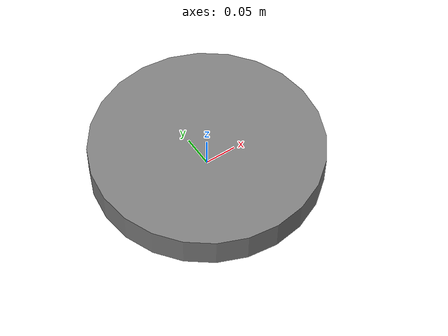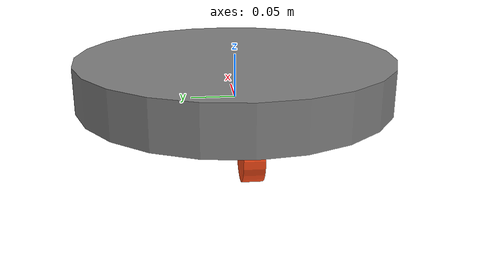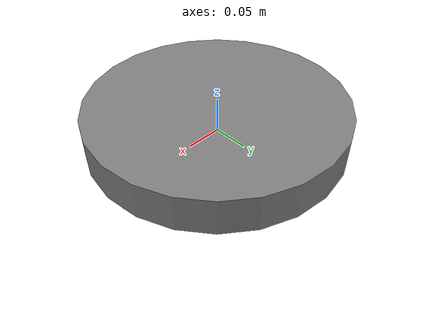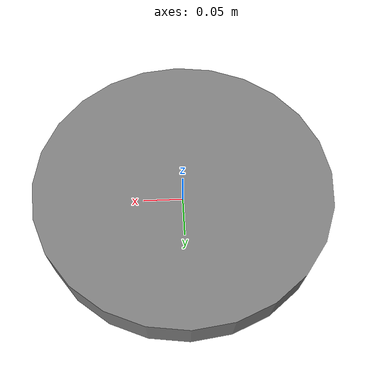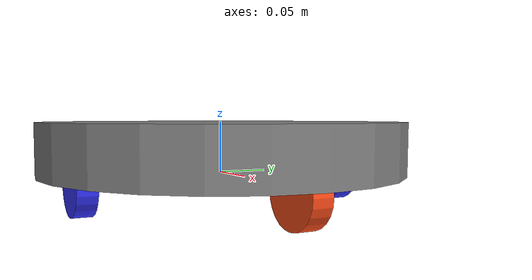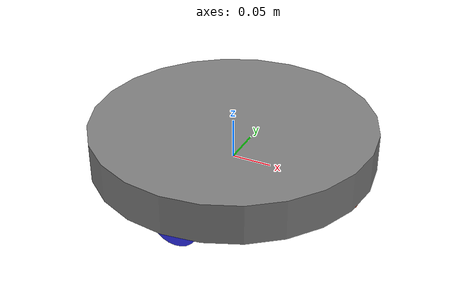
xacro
<?xml version="1.0"?>
<robot xmlns:xacro="http://www.ros.org/wiki/xacro" name="roomba_core"> <!-- Robot core: for Joints/links -->
<xacro:include filename="inertial_macros.xacro"/>
<xacro:include filename="properties.xacro"/>

    <!-- Define reusable materials -->
    <material name="white">
        <color rgba="1 1 1 1" />
    </material>

    <material name="orange">
        <color rgba="1 0.3 0.1 1"/>
    </material>

    <material name="blue">
        <color rgba="0.2 0.2 1 1"/>
    </material>

    <material name="black">
        <color rgba="0 0 0 1"/>
    </material>

    <material name="grey">
      <color rgba="0.5 0.5 0.5 1"/>
    </material>

    <material name="transparent">
      <color rgba="0 0 0 0"/>
    </material>

    <material name="red">
      <color rgba="1 0 0 1"/>
    </material>

  <!--=== PROPERTIES ===-->
  <!-- All dimensions in meters -->

  <!--=== BASE LINK (CHASSIS AS A CYLINDER) ===-->
  <link name="base_link">
    <visual>
      <origin xyz="0 0 ${chassis_thick/2}" rpy="0 0 0"/>
      <geometry>
        <cylinder radius="${chassis_radius}" length="${chassis_thick}"/>
      </geometry>
      <material name="grey"/>
    </visual>
    <!-- In gazebo/simulation environment, it should bump/respond in realism terms -->
    <collision>
      <origin xyz="0 0 ${chassis_thick/2}" rpy="0 0 0"/>
      <geometry>
        <cylinder radius="${chassis_radius}" length="${chassis_thick}"/>
      </geometry>
    </collision>
    <!-- mass: 3 -->
    <xacro:inertial_cylinder mass="3.0"
                             length="${chassis_thick}"
                             radius="${chassis_radius}">
      <origin xyz="0 0 ${chassis_thick/2}" rpy="0 0 0"/>
    </xacro:inertial_cylinder>

  </link>
  <gazebo reference="base_link">
    <material>Gazebo/Grey</material>
    <gravity>false</gravity>
  </gazebo>

  <joint name="base_footprint_joint" type="fixed">
        <parent link="base_link"/>
        <child link="base_footprint"/>
        <origin xyz="0 0 0" rpy="0 0 0"/>
    </joint>

  <link name="base_footprint">
  </link>

  <!--=== LEFT WHEEL ===-->
  <!-- base_link then left_wheel_joint then left_wheel -->
  <!-- This deals with position ONLY, relative to parent (need both joint/link to define position of rigid body) -->
  <joint name="left_wheel_joint" type="continuous">
    <parent link="base_link"/>
    <child link="left_wheel"/>
    <!-- lift wheel by its radius, rotate 90° (this is in radians, and 1.57 radians ~ 90deg or pi/2) around Y to align cylinder axis -->
    <origin xyz="${-max_wheel_movement_down} ${wheel_y_offset} ${wheel_z}" rpy="1.5708 0 0"/>
    <axis   xyz="0 0 1"/>
  </joint>
  <!-- Physical rigid body -->
  <link name="left_wheel">
    <visual>
      <geometry>
        <cylinder radius="${wheel_radius}" length="${wheel_width}"/>
      </geometry>
      <material name="blue"/>
    </visual>
    <collision>
      <origin xyz="0 0 ${wheel_z}" rpy="1.5708 0 0"/>
      <geometry>
        <sphere radius="${wheel_radius}"/>
      </geometry>
    </collision>
    <xacro:inertial_cylinder mass="0.15"
                             length="${wheel_width}"
                             radius="${wheel_radius}">
      <origin rpy="1.5708 0 0"/>
    </xacro:inertial_cylinder>

  </link>

  <gazebo reference="left_wheel">
    <material>Gazebo/Blue</material>
  </gazebo>

  <!--=== RIGHT WHEEL ===-->
  <joint name="right_wheel_joint" type="continuous">
    <parent link="base_link"/>
    <child link="right_wheel"/>
    <origin xyz="${-max_wheel_movement_down} -${wheel_y_offset} ${wheel_z}" rpy="1.5708 0 0"/>
    <axis   xyz="0 0 1"/>
  </joint>
  <link name="right_wheel">
    <visual>
      <geometry>
        <cylinder radius="${wheel_radius}" length="${wheel_width}"/>
      </geometry>
      <material name="blue"/>
    </visual>
    <collision>
      <origin xyz="0 0 ${wheel_z}" rpy="1.5708 0 0"/>
      <geometry>
        <sphere radius="${wheel_radius}"/>
      </geometry>
    </collision>
    <xacro:inertial_cylinder mass="0.15"
                             length="${wheel_width}"
                             radius="${wheel_radius}">
      <origin rpy="1.5708 0 0"/>
    </xacro:inertial_cylinder>

  </link>

  <gazebo reference="right_wheel">
    <material>Gazebo/Blue</material>
  </gazebo>

  <joint name="right_wheel_joint_front" type="fixed">
    <parent link="base_link"/>
    <child link="right_wheel_front"/>
    <origin xyz="${wheel_y_offset} 0 ${wheel_z}" rpy="1.5708 0 0"/>
    <axis   xyz="0 0 1"/>
  </joint>
  <link name="right_wheel_front">
    <visual>
      <geometry>
        <cylinder radius="${wheel_radius}" length="${wheel_width}"/>
      </geometry>
      <material name="orange"/>
    </visual>
    <collision>
      <origin xyz="${wheel_y_offset} 0 ${wheel_z}" rpy="1.5708 0 0"/>
      <geometry>
        <sphere radius="${wheel_radius}"/>
      </geometry>
    </collision>
    <xacro:inertial_cylinder mass="0.15"
                             length="${wheel_width}"
                             radius="${wheel_radius}">
      <origin rpy="1.5708 0 0"/>
    </xacro:inertial_cylinder>

  </link>

  <gazebo reference="right_wheel_front">
    <material>Gazebo/TransparentOrange</material>
    <mu1 value="0.001"/>
    <mu2 value="0.001"/>
  </gazebo>

  <joint name="left_wheel_joint_front" type="fixed">
    <parent link="base_link"/>
    <child link="left_wheel_front"/>
    <origin xyz="${-wheel_y_offset} 0 ${wheel_z}" rpy="1.5708 0 0"/>
    <axis   xyz="0 0 1"/>
  </joint>
  <link name="left_wheel_front">
    <visual>
      <geometry>
        <cylinder radius="${wheel_radius}" length="${wheel_width}"/>
      </geometry>
      <material name="orange"/>
    </visual>
    <collision>
      <origin xyz="${-wheel_y_offset} 0 ${wheel_z}" rpy="1.5708 0 0"/>
      <geometry>
        <sphere radius="${wheel_radius}"/>
      </geometry>
    </collision>
    <xacro:inertial_cylinder mass="0.15"
                             length="${wheel_width}"
                             radius="${wheel_radius}">
      <origin rpy="1.5708 0 0"/>
    </xacro:inertial_cylinder>

  </link>

  <gazebo reference="left_wheel_front">
    <material>Gazebo/TransparentOrange</material>
    <mu1 value="0.001"/>
    <mu2 value="0.001"/>
  </gazebo>

  <!--=== CASTER WHEEL ===-->

</robot>

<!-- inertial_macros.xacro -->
<robot xmlns:xacro="http://www.ros.org/wiki/xacro" >

    <!-- Specify some standard inertial calculations https://en.wikipedia.org/wiki/List_of_moments_of_inertia -->
    <!-- These make use of xacro's mathematical functionality -->
    <!-- xacro:macro is like a function, params mass radius and *origin lets you nest an origin tag inside of the macro -->
    <xacro:macro name="inertial_sphere" params="mass radius *origin">
        <inertial>
            <!-- Expands what was passed in origin -->
            <xacro:insert_block name="origin"/>
            <!-- Moment of inertia about its center -->
            <mass value="${mass}" />
            <inertia ixx="${(2/5) * mass * (radius*radius)}" ixy="0.0" ixz="0.0"
                    iyy="${(2/5) * mass * (radius*radius)}" iyz="0.0"
                    izz="${(2/5) * mass * (radius*radius)}" />
        </inertial>
    </xacro:macro>

    <xacro:macro name="inertial_box" params="mass x y z *origin">
        <inertial>
            <xacro:insert_block name="origin"/>
            <mass value="${mass}" />
            <inertia ixx="${(1/12) * mass * (y*y+z*z)}" ixy="0.0" ixz="0.0"
                    iyy="${(1/12) * mass * (x*x+z*z)}" iyz="0.0"
                    izz="${(1/12) * mass * (x*x+y*y)}" />
        </inertial>
    </xacro:macro>

    <xacro:macro name="inertial_cylinder" params="mass length radius *origin">
        <inertial>
            <xacro:insert_block name="origin"/>
            <mass value="${mass}" />
            <inertia ixx="${(1/12) * mass * (3*radius*radius + length*length)}" ixy="0.0" ixz="0.0"
                    iyy="${(1/12) * mass * (3*radius*radius + length*length)}" iyz="0.0"
                    izz="${(1/2) * mass * (radius*radius)}" />
        </inertial>
    </xacro:macro>

</robot>

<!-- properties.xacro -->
<robot xmlns:xacro="http://www.ros.org/wiki/xacro">

    <xacro:property name="chassis_radius"   value="0.1778"/>   <!-- 7 in = 0.1778 m -->
    <xacro:property name="chassis_thick"    value="0.05"/>     <!-- chassis height -->
    <xacro:property name="wheel_radius"     value="0.0301625"/>    <!-- ~70 mm dia. 0.035 meters -->
    <xacro:property name="wheel_width"      value="0.01905"/>
    <xacro:property name="wheel_y_offset"   value="0.14"/>     <!-- offset from center  0.16-->
    <xacro:property name="caster_radius"    value="0.02"/>
    <xacro:property name="max_wheel_movement_down" value="0"/>
    <xacro:property name="caster_x_offset"  value="0.15"/>
    <xacro:property name="wheel_z" value="${(wheel_radius - (chassis_thick/2))-0.01}"/>
    <xacro:property name="cam_length"   value="0.0405"/>
    <xacro:property name="cam_width"   value="0.027"/>
    <xacro:property name="cam_height"   value="0.0045"/>
    <xacro:property name="ninety_deg"   value="1.5708"/>

</robot>
